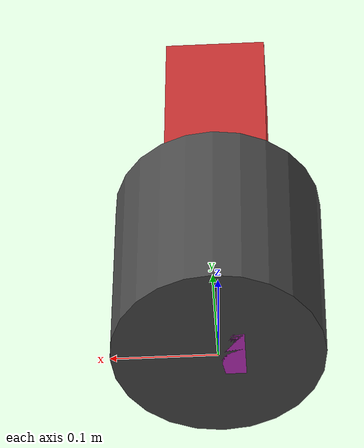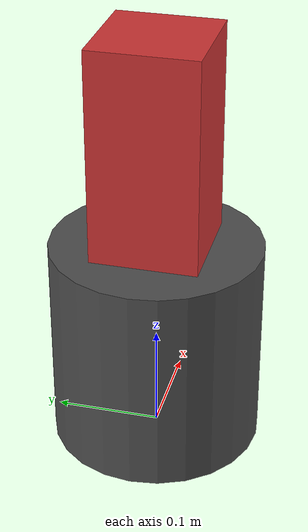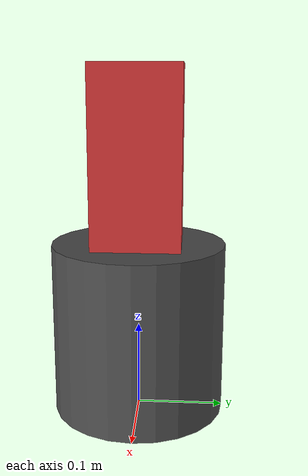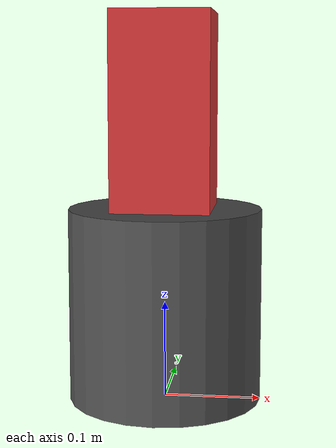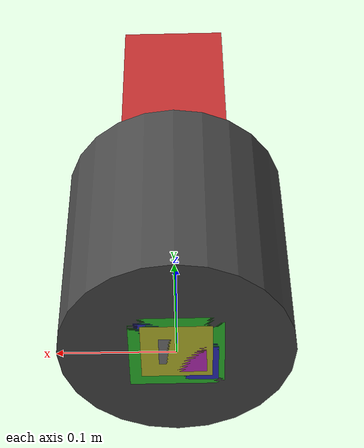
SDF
<?xml version="1.0"?>
<sdf version="1.9">
  <model name="iiwa7">
    <link name="iiwa_link_0">
      <visual name="base_visual">
        <geometry>
          <cylinder>
            <radius>0.1</radius>
            <length>0.2</length>
          </cylinder>
        </geometry>
        <material>
          <diffuse>0.3 0.3 0.3 1.0</diffuse>
        </material>
      </visual>
      <pose>0 0 0.1 0 0 0</pose>
    </link>

    <link name="iiwa_link_1">
      <visual name="link1_visual">
        <geometry>
          <box>
            <size>0.1 0.1 0.3</size>
          </box>
        </geometry>
        <material>
          <diffuse>0.8 0.2 0.2 1.0</diffuse>
        </material>
      </visual>
      <pose>0 0 0.25 0 0 0</pose>
    </link>

    <joint name="iiwa_joint_1" type="revolute">
      <parent>iiwa_link_0</parent>
      <child>iiwa_link_1</child>
      <axis>
        <xyz>0 0 1</xyz>
      </axis>
    </joint>

    <!-- Add more links and joints for a 7-DOF arm -->
    <link name="iiwa_link_2">
      <visual name="link2_visual">
        <geometry>
          <box>
            <size>0.08 0.08 0.25</size>
          </box>
        </geometry>
        <material>
          <diffuse>0.2 0.8 0.2 1.0</diffuse>
        </material>
      </visual>
      <pose>0 0 0.125 0 0 0</pose>
    </link>

    <joint name="iiwa_joint_2" type="revolute">
      <parent>iiwa_link_1</parent>
      <child>iiwa_link_2</child>
      <axis>
        <xyz>0 1 0</xyz>
      </axis>
    </joint>

    <!-- Continue with links 3-7 for a full 7-DOF arm -->
    <link name="iiwa_link_3">
      <visual name="link3_visual">
        <geometry>
          <box>
            <size>0.07 0.07 0.2</size>
          </box>
        </geometry>
        <material>
          <diffuse>0.2 0.2 0.8 1.0</diffuse>
        </material>
      </visual>
      <pose>0 0 0.1 0 0 0</pose>
    </link>

    <joint name="iiwa_joint_3" type="revolute">
      <parent>iiwa_link_2</parent>
      <child>iiwa_link_3</child>
      <axis>
        <xyz>0 1 0</xyz>
      </axis>
    </joint>

    <link name="iiwa_link_4">
      <visual name="link4_visual">
        <geometry>
          <box>
            <size>0.06 0.06 0.15</size>
          </box>
        </geometry>
        <material>
          <diffuse>0.8 0.8 0.2 1.0</diffuse>
        </material>
      </visual>
      <pose>0 0 0.075 0 0 0</pose>
    </link>

    <joint name="iiwa_joint_4" type="revolute">
      <parent>iiwa_link_3</parent>
      <child>iiwa_link_4</child>
      <axis>
        <xyz>0 0 1</xyz>
      </axis>
    </joint>

    <link name="iiwa_link_5">
      <visual name="link5_visual">
        <geometry>
          <box>
            <size>0.05 0.05 0.12</size>
          </box>
        </geometry>
        <material>
          <diffuse>0.8 0.2 0.8 1.0</diffuse>
        </material>
      </visual>
      <pose>0 0 0.06 0 0 0</pose>
    </link>

    <joint name="iiwa_joint_5" type="revolute">
      <parent>iiwa_link_4</parent>
      <child>iiwa_link_5</child>
      <axis>
        <xyz>0 1 0</xyz>
      </axis>
    </joint>

    <link name="iiwa_link_6">
      <visual name="link6_visual">
        <geometry>
          <box>
            <size>0.04 0.04 0.1</size>
          </box>
        </geometry>
        <material>
          <diffuse>0.2 0.8 0.8 1.0</diffuse>
        </material>
      </visual>
      <pose>0 0 0.05 0 0 0</pose>
    </link>

    <joint name="iiwa_joint_6" type="revolute">
      <parent>iiwa_link_5</parent>
      <child>iiwa_link_6</child>
      <axis>
        <xyz>0 0 1</xyz>
      </axis>
    </joint>

    <link name="iiwa_link_7">
      <visual name="link7_visual">
        <geometry>
          <box>
            <size>0.03 0.03 0.08</size>
          </box>
        </geometry>
        <material>
          <diffuse>0.5 0.5 0.5 1.0</diffuse>
        </material>
      </visual>
      <pose>0 0 0.04 0 0 0</pose>
    </link>

    <joint name="iiwa_joint_7" type="revolute">
      <parent>iiwa_link_6</parent>
      <child>iiwa_link_7</child>
      <axis>
        <xyz>0 1 0</xyz>
      </axis>
    </joint>
  </model>
</sdf>
